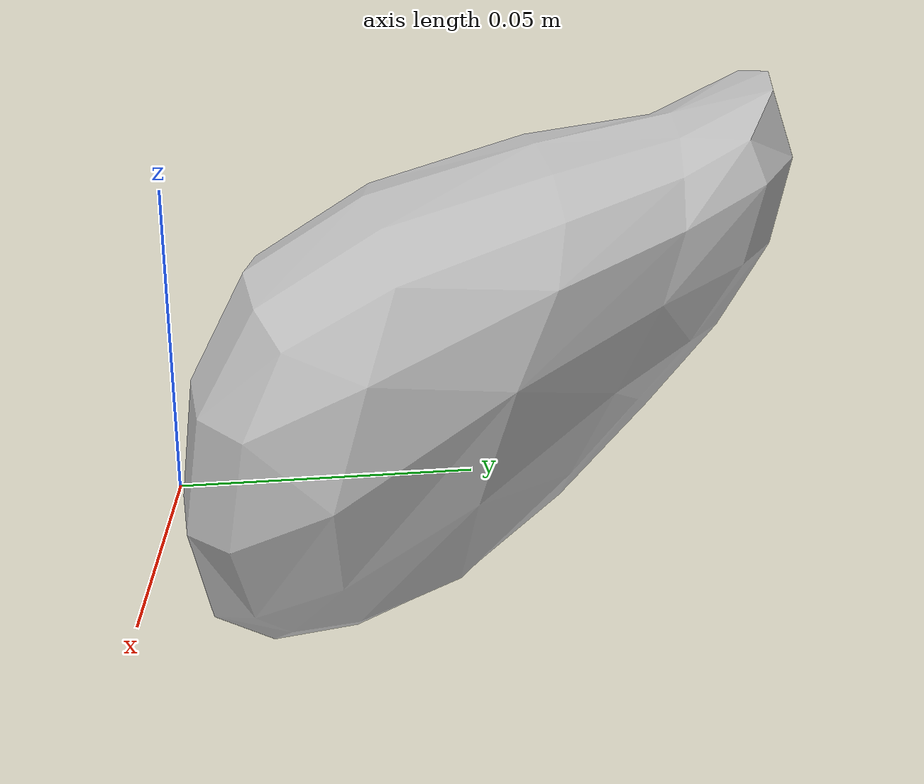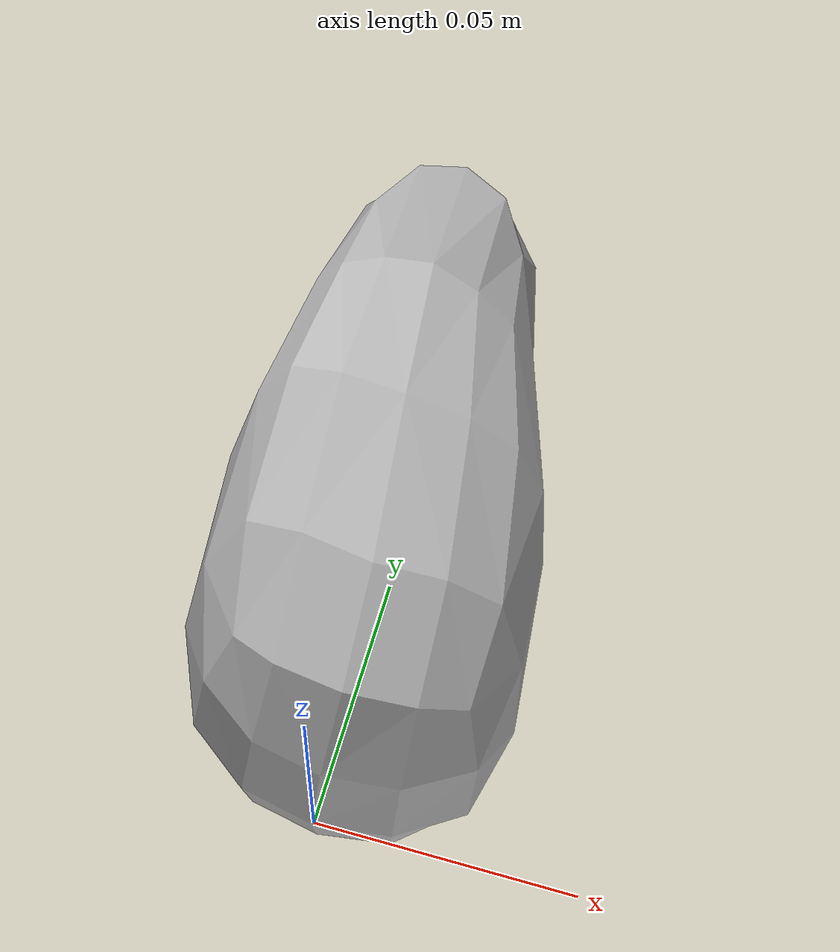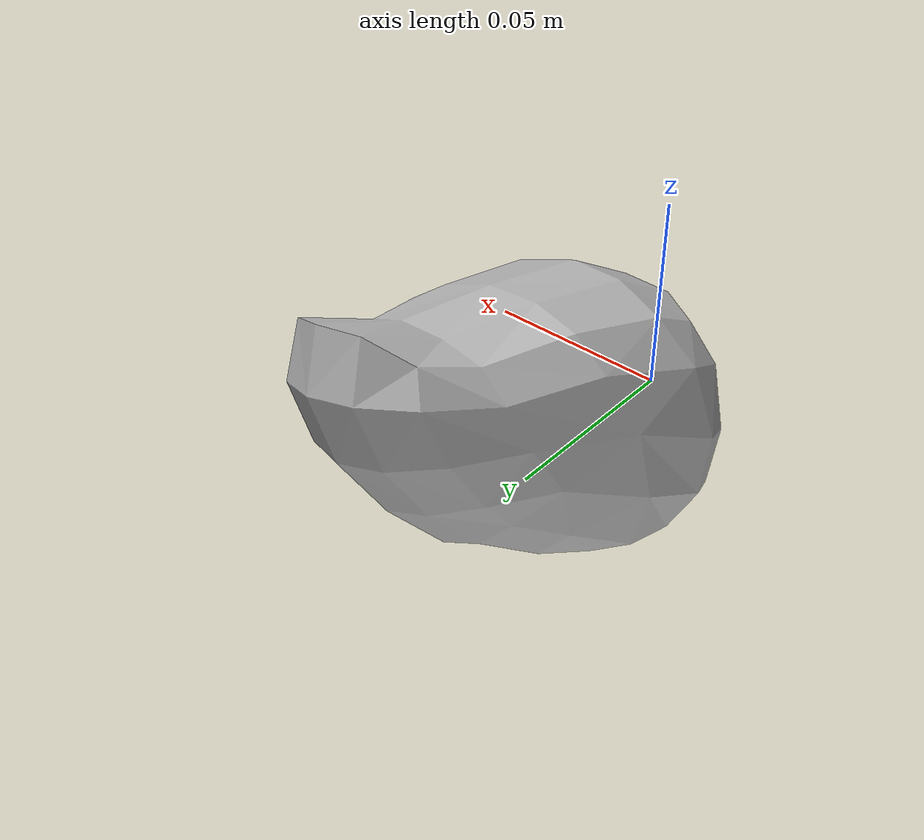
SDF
<?xml version="1.0" ?>
<sdf version="1.4">
  <model name="shelf3_bird">
    <link name="body">
      <pose>0 0 0 0 0 0</pose>
      <inertial>
        <pose>  -0.001926   0.047822   0.020773 0 0 0</pose>
        <mass>0.5</mass>
        <inertia>
          <ixx>0.01</ixx>
          <ixy>0</ixy>
          <ixz>0</ixz>
          <iyy>0.01</iyy>
          <iyz>0</iyz>
          <izz>0.01</izz>
        </inertia>
      </inertial>
      <collision name="collision">
        <geometry>
          <mesh>
            <uri>model://bookshelf/shelf3_items/bird/bird.dae</uri>
          </mesh>
        </geometry>
      </collision>
      <visual name="visual">
        <geometry>
          <mesh>
            <uri>model://bookshelf/shelf3_items/bird/bird.dae</uri>
          </mesh>
        </geometry>
      </visual>
    </link>
  </model>
</sdf>
